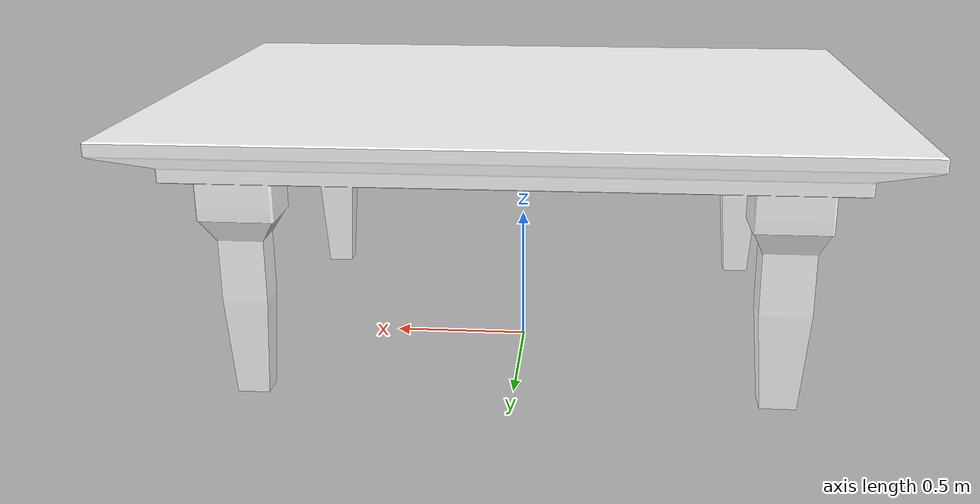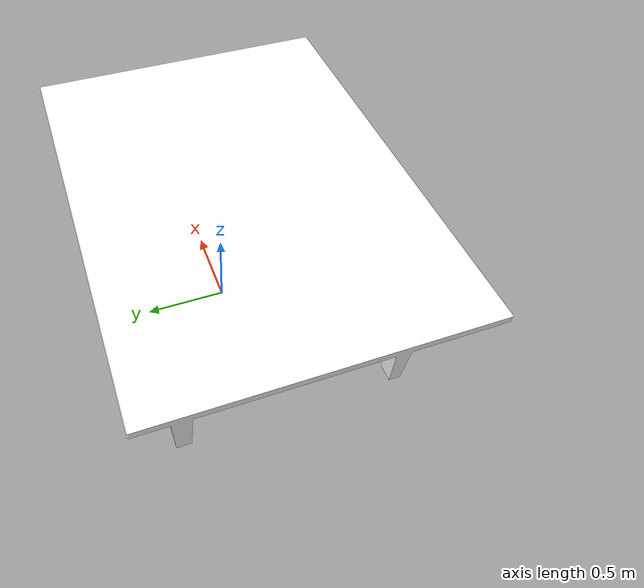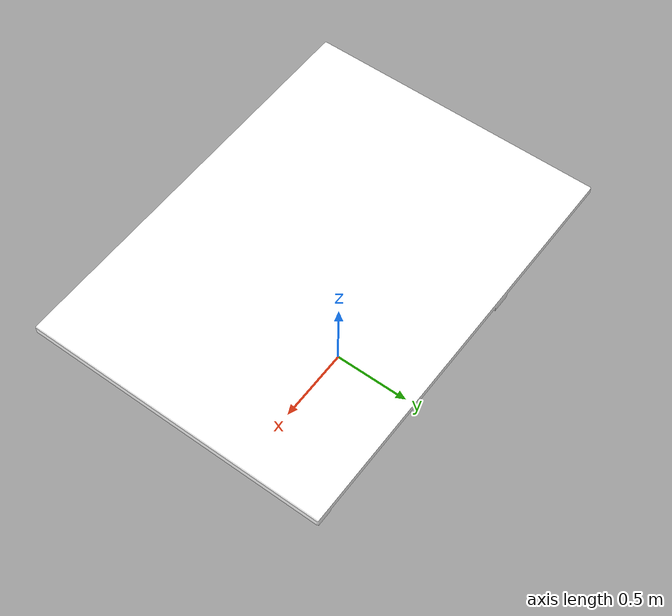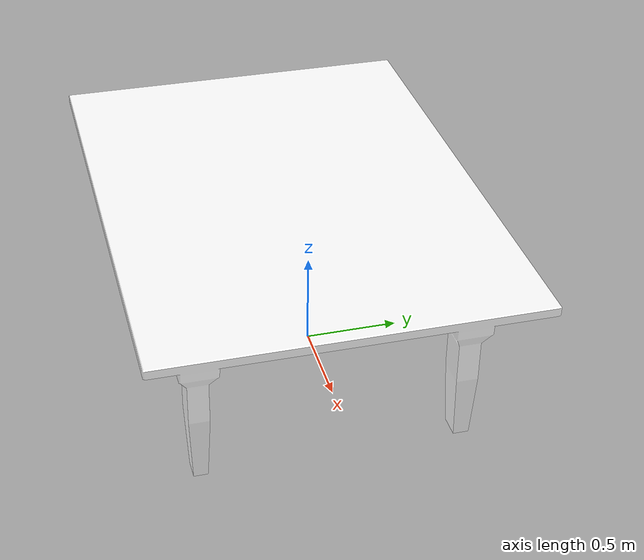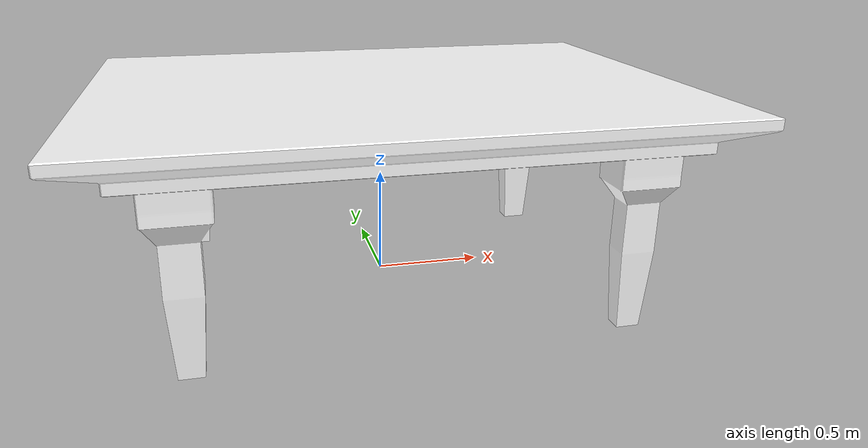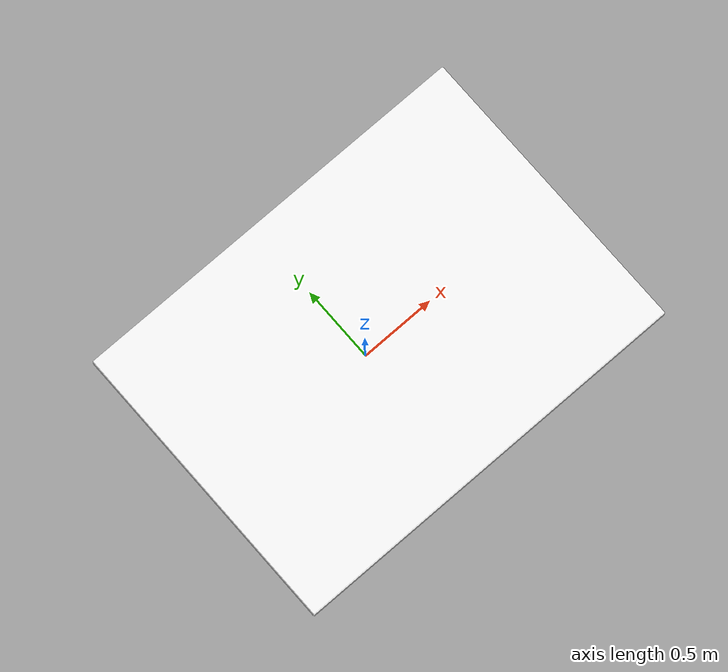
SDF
<?xml version="1.0" ?>
<sdf version="1.4">
  <model name="table_marble">
    <static>true</static>
    <pose>0 0 0.648 0 0 0</pose>
    <link name="link">
      <collision name="collision">
        <geometry>
          <mesh>
            <uri>model://table_marble/meshes/table_lightmap.dae</uri>
            <scale>0.25 0.25 0.25</scale>
          </mesh>
        </geometry>
      </collision>
      <visual name="visual">
        <geometry>
          <mesh>
            <uri>model://table_marble/meshes/table_lightmap.dae</uri>
            <scale>0.25 0.25 0.25</scale>
          </mesh>
        </geometry>
        <material>
          <diffuse>1.0 1.0 1.0</diffuse>
          <script>
            <uri>model://table_marble/materials/scripts</uri>
            <uri>model://table_marble/materials/textures</uri>
            <name>Table/Marble_Lightmap</name>
          </script>
          <lighting>false</lighting>
          <pbr>
            <metal>
              <albedo_map>model://table_marble/materials/textures/marble.png</albedo_map>
            </metal>
          </pbr>
        </material>
      </visual>
    </link>
  </model>
</sdf>
